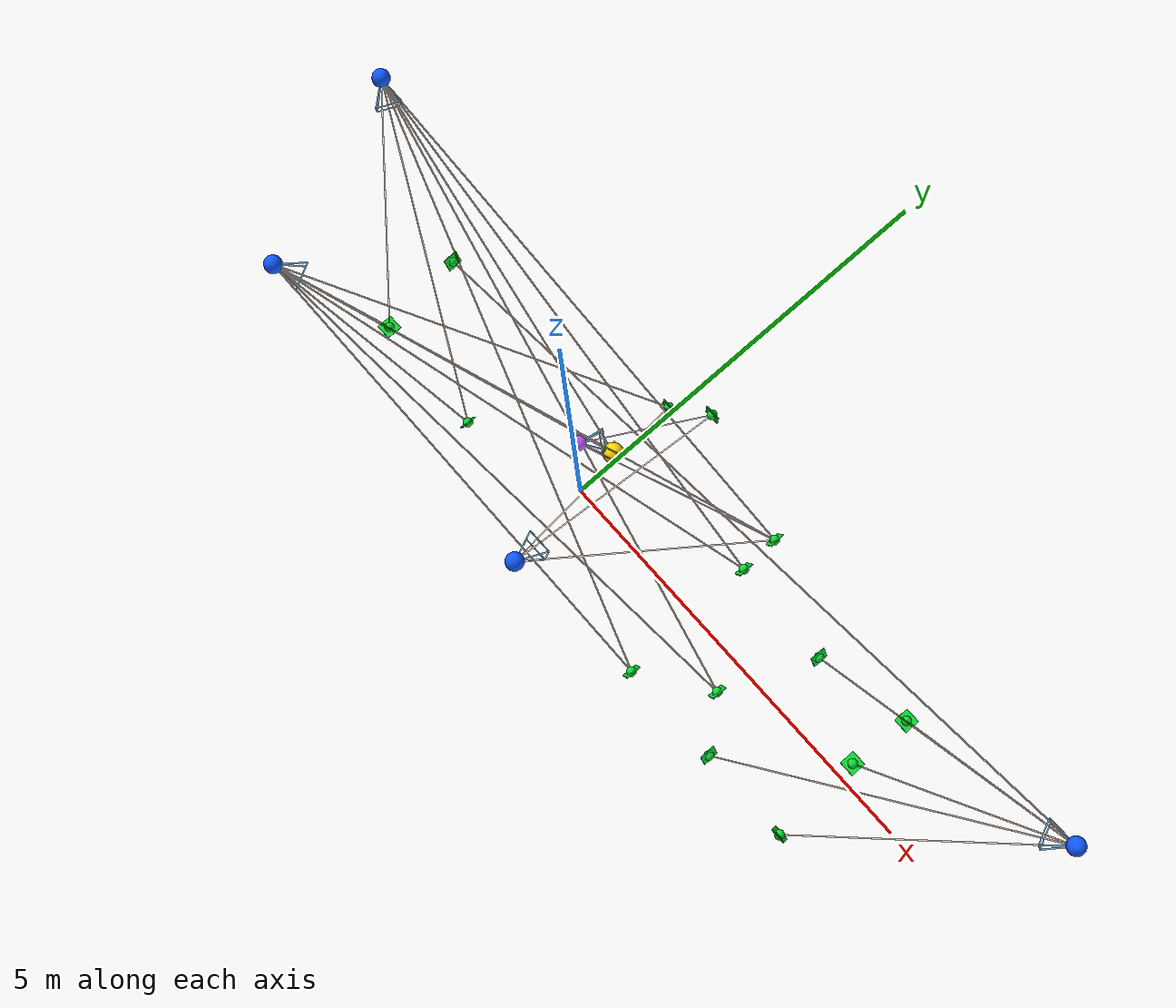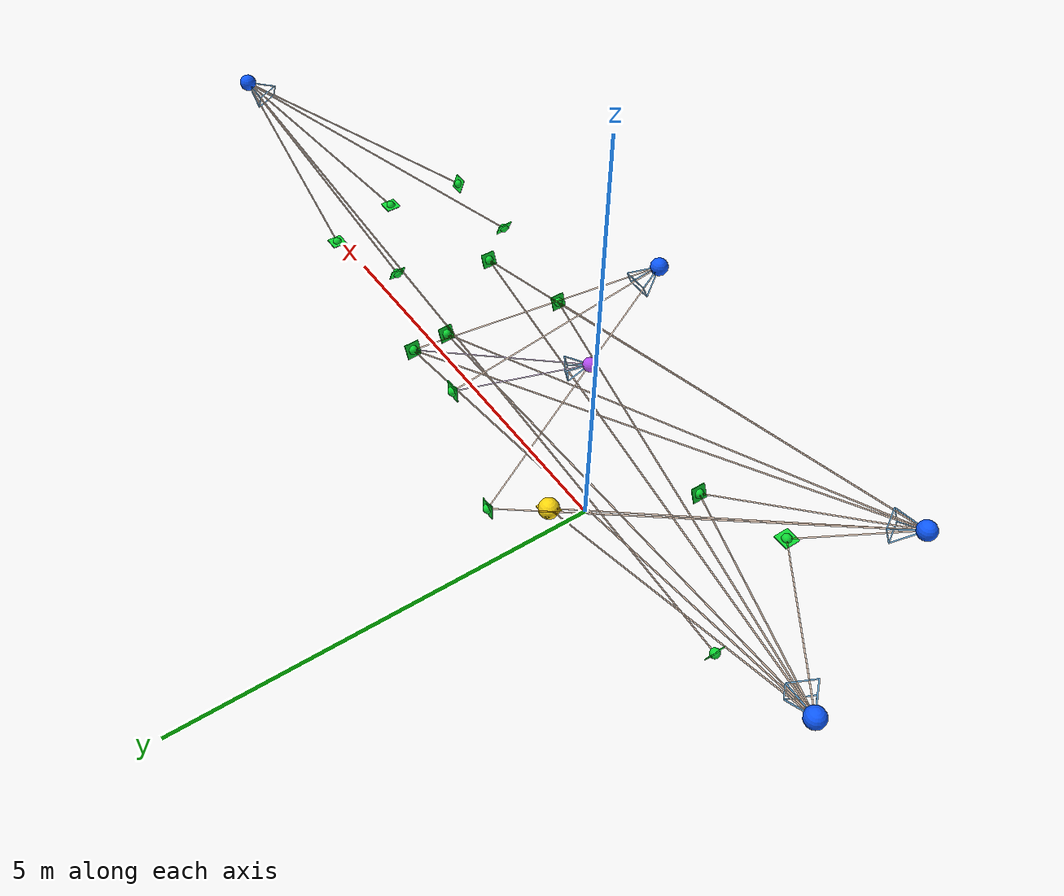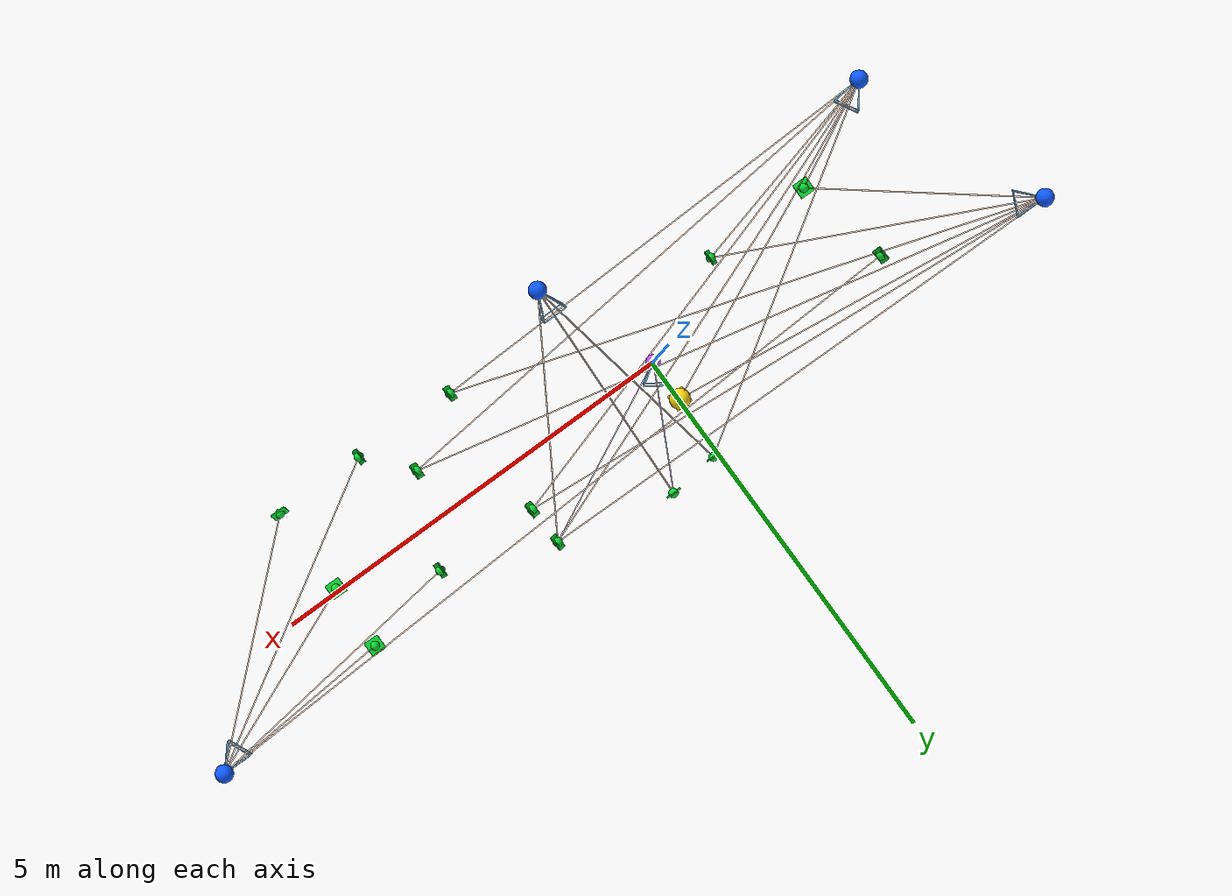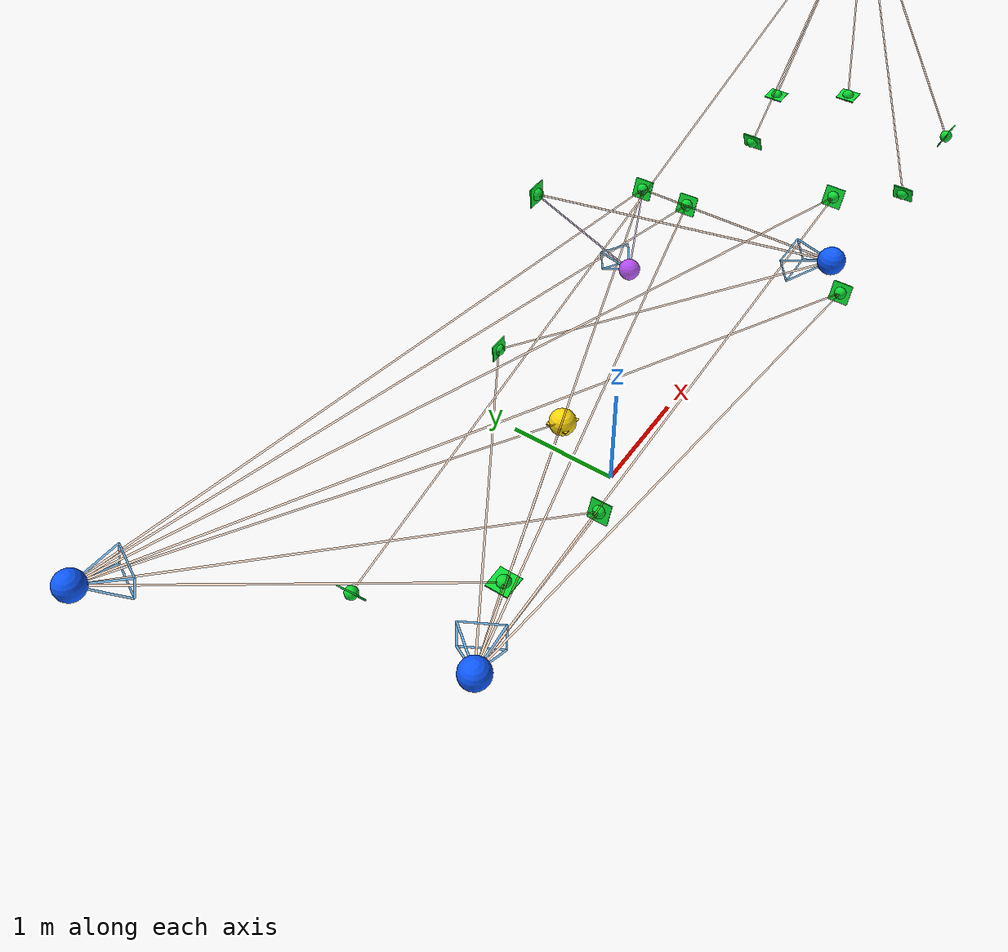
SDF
<?xml version="1.0"?>
<sdf version="1.7">
  <model name="ap02_graph_presentation_observation_overlay">
    <static>true</static>
    <link name="ap02_presentation_overlay_link">

      <visual name="NODE_REF_ARUCO_14">
        <pose>0.000000 0.500000 0.400000 0 0 0</pose>
        <geometry><sphere><radius>0.1200</radius></sphere></geometry>

          <material>
            <ambient>1.000 0.850 0.050 1.000</ambient>
            <diffuse>1.000 0.850 0.050 1.000</diffuse>
          </material>
      </visual>
      <visual name="PLANE_REF_ARUCO_14">
        <pose>0.000000 0.500000 0.400000 -0.000000 -0.000000 0.000000</pose>
        <geometry><box><size>0.2000 0.2000 0.0150</size></box></geometry>

          <material>
            <ambient>1.000 0.850 0.050 1.000</ambient>
            <diffuse>1.000 0.850 0.050 1.000</diffuse>
          </material>
      </visual>
      <visual name="NODE_STATIC_CAMERA_cam_edge_0">
        <pose>0.614323 -1.251895 2.532875 0 0 0</pose>
        <geometry><sphere><radius>0.0950</radius></sphere></geometry>

          <material>
            <ambient>0.050 0.350 1.000 1.000</ambient>
            <diffuse>0.050 0.350 1.000 1.000</diffuse>
          </material>
      </visual>
      <visual name="FRUSTUM_cam_edge_0_frustum_ray_0">
        <pose>0.547086 -1.097788 2.509408 1.709476 -0.000000 -2.730187</pose>
        <geometry>
          <cylinder>
            <radius>0.00600</radius>
            <length>0.339531</length>
          </cylinder>
        </geometry>

          <material>
            <ambient>0.050 0.600 1.000 0.550</ambient>
            <diffuse>0.050 0.600 1.000 0.550</diffuse>
          </material>
      </visual>
      <visual name="FRUSTUM_cam_edge_0_frustum_ray_1">
        <pose>0.682010 -1.097368 2.513895 1.682831 -0.000000 2.728735</pose>
        <geometry>
          <cylinder>
            <radius>0.00600</radius>
            <length>0.339531</length>
          </cylinder>
        </geometry>

          <material>
            <ambient>0.050 0.600 1.000 0.550</ambient>
            <diffuse>0.050 0.600 1.000 0.550</diffuse>
          </material>
      </visual>
      <visual name="FRUSTUM_cam_edge_0_frustum_ray_2">
        <pose>0.684676 -1.130825 2.436892 2.171701 -0.000000 2.615189</pose>
        <geometry>
          <cylinder>
            <radius>0.00600</radius>
            <length>0.339531</length>
          </cylinder>
        </geometry>

          <material>
            <ambient>0.050 0.600 1.000 0.550</ambient>
            <diffuse>0.050 0.600 1.000 0.550</diffuse>
          </material>
      </visual>
      <visual name="FRUSTUM_cam_edge_0_frustum_ray_3">
        <pose>0.549751 -1.131245 2.432404 2.204116 -0.000000 -2.650183</pose>
        <geometry>
          <cylinder>
            <radius>0.00600</radius>
            <length>0.339531</length>
          </cylinder>
        </geometry>

          <material>
            <ambient>0.050 0.600 1.000 0.550</ambient>
            <diffuse>0.050 0.600 1.000 0.550</diffuse>
          </material>
      </visual>
      <visual name="FRUSTUM_cam_edge_0_frustum_rect_0">
        <pose>0.614773 -0.943262 2.490428 1.537548 -0.000000 1.573911</pose>
        <geometry>
          <cylinder>
            <radius>0.00500</radius>
            <length>0.270000</length>
          </cylinder>
        </geometry>

          <material>
            <ambient>0.050 0.600 1.000 0.550</ambient>
            <diffuse>0.050 0.600 1.000 0.550</diffuse>
          </material>
      </visual>
      <visual name="FRUSTUM_cam_edge_0_frustum_rect_1">
        <pose>0.752363 -0.976299 2.417912 2.730561 0.000000 0.079500</pose>
        <geometry>
          <cylinder>
            <radius>0.00500</radius>
            <length>0.168000</length>
          </cylinder>
        </geometry>

          <material>
            <ambient>0.050 0.600 1.000 0.550</ambient>
            <diffuse>0.050 0.600 1.000 0.550</diffuse>
          </material>
      </visual>
      <visual name="FRUSTUM_cam_edge_0_frustum_rect_2">
        <pose>0.620104 -1.010175 2.336421 1.604045 -0.000000 -1.567682</pose>
        <geometry>
          <cylinder>
            <radius>0.00500</radius>
            <length>0.270000</length>
          </cylinder>
        </geometry>

          <material>
            <ambient>0.050 0.600 1.000 0.550</ambient>
            <diffuse>0.050 0.600 1.000 0.550</diffuse>
          </material>
      </visual>
      <visual name="FRUSTUM_cam_edge_0_frustum_rect_3">
        <pose>0.482514 -0.977139 2.408937 0.411032 -0.000000 -3.062092</pose>
        <geometry>
          <cylinder>
            <radius>0.00500</radius>
            <length>0.168000</length>
          </cylinder>
        </geometry>

          <material>
            <ambient>0.050 0.600 1.000 0.550</ambient>
            <diffuse>0.050 0.600 1.000 0.550</diffuse>
          </material>
      </visual>
      <visual name="NODE_STATIC_CAMERA_cam_edge_1">
        <pose>-4.083874 0.999618 2.503114 0 0 0</pose>
        <geometry><sphere><radius>0.0950</radius></sphere></geometry>

          <material>
            <ambient>0.050 0.350 1.000 1.000</ambient>
            <diffuse>0.050 0.350 1.000 1.000</diffuse>
          </material>
      </visual>
      <visual name="FRUSTUM_cam_edge_1_frustum_ray_0">
        <pose>-3.914203 0.994303 2.505086 1.559179 0.000000 1.539480</pose>
        <geometry>
          <cylinder>
            <radius>0.00600</radius>
            <length>0.339531</length>
          </cylinder>
        </geometry>

          <material>
            <ambient>0.050 0.600 1.000 0.550</ambient>
            <diffuse>0.050 0.600 1.000 0.550</diffuse>
          </material>
      </visual>
      <visual name="FRUSTUM_cam_edge_1_frustum_ray_1">
        <pose>-3.971731 0.872174 2.504626 1.561888 0.000000 0.721622</pose>
        <geometry>
          <cylinder>
            <radius>0.00600</radius>
            <length>0.339531</length>
          </cylinder>
        </geometry>

          <material>
            <ambient>0.050 0.600 1.000 0.550</ambient>
            <diffuse>0.050 0.600 1.000 0.550</diffuse>
          </material>
      </visual>
      <visual name="FRUSTUM_cam_edge_1_frustum_ray_2">
        <pose>-3.991283 0.881690 2.423490 2.058985 0.000000 0.665618</pose>
        <geometry>
          <cylinder>
            <radius>0.00600</radius>
            <length>0.339531</length>
          </cylinder>
        </geometry>

          <material>
            <ambient>0.050 0.600 1.000 0.550</ambient>
            <diffuse>0.050 0.600 1.000 0.550</diffuse>
          </material>
      </visual>
      <visual name="FRUSTUM_cam_edge_1_frustum_ray_3">
        <pose>-3.933755 1.003818 2.423950 2.055920 -0.000000 1.598768</pose>
        <geometry>
          <cylinder>
            <radius>0.00600</radius>
            <length>0.339531</length>
          </cylinder>
        </geometry>

          <material>
            <ambient>0.050 0.600 1.000 0.550</ambient>
            <diffuse>0.050 0.600 1.000 0.550</diffuse>
          </material>
      </visual>
      <visual name="FRUSTUM_cam_edge_1_frustum_rect_0">
        <pose>-3.802060 0.866859 2.506599 1.574203 -0.000000 -0.440213</pose>
        <geometry>
          <cylinder>
            <radius>0.00500</radius>
            <length>0.270000</length>
          </cylinder>
        </geometry>

          <material>
            <ambient>0.050 0.600 1.000 0.550</ambient>
            <diffuse>0.050 0.600 1.000 0.550</diffuse>
          </material>
      </visual>
      <visual name="FRUSTUM_cam_edge_1_frustum_rect_1">
        <pose>-3.879140 0.754246 2.425002 -2.906676 -0.116742 1.570796</pose>
        <geometry>
          <cylinder>
            <radius>0.00500</radius>
            <length>0.168000</length>
          </cylinder>
        </geometry>

          <material>
            <ambient>0.050 0.600 1.000 0.550</ambient>
            <diffuse>0.050 0.600 1.000 0.550</diffuse>
          </material>
      </visual>
      <visual name="FRUSTUM_cam_edge_1_frustum_rect_2">
        <pose>-3.841164 0.885890 2.344325 1.567390 -0.000000 2.701379</pose>
        <geometry>
          <cylinder>
            <radius>0.00500</radius>
            <length>0.270000</length>
          </cylinder>
        </geometry>

          <material>
            <ambient>0.050 0.600 1.000 0.550</ambient>
            <diffuse>0.050 0.600 1.000 0.550</diffuse>
          </material>
      </visual>
      <visual name="FRUSTUM_cam_edge_1_frustum_rect_3">
        <pose>-3.764084 0.998503 2.425922 -0.234917 0.116742 -1.570796</pose>
        <geometry>
          <cylinder>
            <radius>0.00500</radius>
            <length>0.168000</length>
          </cylinder>
        </geometry>

          <material>
            <ambient>0.050 0.600 1.000 0.550</ambient>
            <diffuse>0.050 0.600 1.000 0.550</diffuse>
          </material>
      </visual>
      <visual name="NODE_STATIC_CAMERA_cam_edge_3">
        <pose>-3.280583 -1.075010 2.432253 0 0 0</pose>
        <geometry><sphere><radius>0.0950</radius></sphere></geometry>

          <material>
            <ambient>0.050 0.350 1.000 1.000</ambient>
            <diffuse>0.050 0.350 1.000 1.000</diffuse>
          </material>
      </visual>
      <visual name="FRUSTUM_cam_edge_3_frustum_ray_0">
        <pose>-3.177546 -0.940302 2.424685 1.615386 -0.000000 2.488633</pose>
        <geometry>
          <cylinder>
            <radius>0.00600</radius>
            <length>0.339531</length>
          </cylinder>
        </geometry>

          <material>
            <ambient>0.050 0.600 1.000 0.550</ambient>
            <diffuse>0.050 0.600 1.000 0.550</diffuse>
          </material>
      </visual>
      <visual name="FRUSTUM_cam_edge_3_frustum_ray_1">
        <pose>-3.111895 -1.058252 2.423102 1.624727 -0.000000 1.669814</pose>
        <geometry>
          <cylinder>
            <radius>0.00600</radius>
            <length>0.339531</length>
          </cylinder>
        </geometry>

          <material>
            <ambient>0.050 0.600 1.000 0.550</ambient>
            <diffuse>0.050 0.600 1.000 0.550</diffuse>
          </material>
      </visual>
      <visual name="FRUSTUM_cam_edge_3_frustum_ray_2">
        <pose>-3.135903 -1.070547 2.343550 2.120578 -0.000000 1.601634</pose>
        <geometry>
          <cylinder>
            <radius>0.00600</radius>
            <length>0.339531</length>
          </cylinder>
        </geometry>

          <material>
            <ambient>0.050 0.600 1.000 0.550</ambient>
            <diffuse>0.050 0.600 1.000 0.550</diffuse>
          </material>
      </visual>
      <visual name="FRUSTUM_cam_edge_3_frustum_ray_3">
        <pose>-3.201555 -0.952597 2.345134 2.109672 -0.000000 2.568329</pose>
        <geometry>
          <cylinder>
            <radius>0.00600</radius>
            <length>0.339531</length>
          </cylinder>
        </geometry>

          <material>
            <ambient>0.050 0.600 1.000 0.550</ambient>
            <diffuse>0.050 0.600 1.000 0.550</diffuse>
          </material>
      </visual>
      <visual name="FRUSTUM_cam_edge_3_frustum_rect_0">
        <pose>-3.008858 -0.923544 2.415534 1.582529 0.000000 0.507897</pose>
        <geometry>
          <cylinder>
            <radius>0.00500</radius>
            <length>0.270000</length>
          </cylinder>
        </geometry>

          <material>
            <ambient>0.050 0.600 1.000 0.550</ambient>
            <diffuse>0.050 0.600 1.000 0.550</diffuse>
          </material>
      </visual>
      <visual name="FRUSTUM_cam_edge_3_frustum_rect_1">
        <pose>-2.967215 -1.053789 2.334399 2.814688 -0.000000 -1.097510</pose>
        <geometry>
          <cylinder>
            <radius>0.00500</radius>
            <length>0.168000</length>
          </cylinder>
        </geometry>

          <material>
            <ambient>0.050 0.600 1.000 0.550</ambient>
            <diffuse>0.050 0.600 1.000 0.550</diffuse>
          </material>
      </visual>
      <visual name="FRUSTUM_cam_edge_3_frustum_rect_2">
        <pose>-3.056875 -0.948134 2.256432 1.559064 -0.000000 -2.633696</pose>
        <geometry>
          <cylinder>
            <radius>0.00500</radius>
            <length>0.270000</length>
          </cylinder>
        </geometry>

          <material>
            <ambient>0.050 0.600 1.000 0.550</ambient>
            <diffuse>0.050 0.600 1.000 0.550</diffuse>
          </material>
      </visual>
      <visual name="FRUSTUM_cam_edge_3_frustum_rect_3">
        <pose>-3.098518 -0.817888 2.337567 0.326905 -0.000000 2.044083</pose>
        <geometry>
          <cylinder>
            <radius>0.00500</radius>
            <length>0.168000</length>
          </cylinder>
        </geometry>

          <material>
            <ambient>0.050 0.600 1.000 0.550</ambient>
            <diffuse>0.050 0.600 1.000 0.550</diffuse>
          </material>
      </visual>
      <visual name="NODE_STATIC_CAMERA_cam_edge_5">
        <pose>6.015453 0.834823 2.612785 0 0 0</pose>
        <geometry><sphere><radius>0.0950</radius></sphere></geometry>

          <material>
            <ambient>0.050 0.350 1.000 1.000</ambient>
            <diffuse>0.050 0.350 1.000 1.000</diffuse>
          </material>
      </visual>
      <visual name="FRUSTUM_cam_edge_5_frustum_ray_0">
        <pose>5.898478 0.711931 2.606908 1.605421 -0.000000 -0.760735</pose>
        <geometry>
          <cylinder>
            <radius>0.00600</radius>
            <length>0.339531</length>
          </cylinder>
        </geometry>

          <material>
            <ambient>0.050 0.600 1.000 0.550</ambient>
            <diffuse>0.050 0.600 1.000 0.550</diffuse>
          </material>
      </visual>
      <visual name="FRUSTUM_cam_edge_5_frustum_ray_1">
        <pose>5.846646 0.835996 2.594809 1.676878 -0.000000 -1.577743</pose>
        <geometry>
          <cylinder>
            <radius>0.00600</radius>
            <length>0.339531</length>
          </cylinder>
        </geometry>

          <material>
            <ambient>0.050 0.600 1.000 0.550</ambient>
            <diffuse>0.050 0.600 1.000 0.550</diffuse>
          </material>
      </visual>
      <visual name="FRUSTUM_cam_edge_5_frustum_ray_2">
        <pose>5.875947 0.840573 2.516218 2.175870 -0.000000 -1.611987</pose>
        <geometry>
          <cylinder>
            <radius>0.00600</radius>
            <length>0.339531</length>
          </cylinder>
        </geometry>

          <material>
            <ambient>0.050 0.600 1.000 0.550</ambient>
            <diffuse>0.050 0.600 1.000 0.550</diffuse>
          </material>
      </visual>
      <visual name="FRUSTUM_cam_edge_5_frustum_ray_3">
        <pose>5.927778 0.716508 2.528317 2.091577 -0.000000 -0.637735</pose>
        <geometry>
          <cylinder>
            <radius>0.00600</radius>
            <length>0.339531</length>
          </cylinder>
        </geometry>

          <material>
            <ambient>0.050 0.600 1.000 0.550</ambient>
            <diffuse>0.050 0.600 1.000 0.550</diffuse>
          </material>
      </visual>
      <visual name="FRUSTUM_cam_edge_5_frustum_rect_0">
        <pose>5.729671 0.713104 2.588933 1.660535 -0.000000 -2.745854</pose>
        <geometry>
          <cylinder>
            <radius>0.00500</radius>
            <length>0.270000</length>
          </cylinder>
        </geometry>

          <material>
            <ambient>0.050 0.600 1.000 0.550</ambient>
            <diffuse>0.050 0.600 1.000 0.550</diffuse>
          </material>
      </visual>
      <visual name="FRUSTUM_cam_edge_5_frustum_rect_1">
        <pose>5.707140 0.841746 2.498243 2.780773 -0.000000 1.725755</pose>
        <geometry>
          <cylinder>
            <radius>0.00500</radius>
            <length>0.168000</length>
          </cylinder>
        </geometry>

          <material>
            <ambient>0.050 0.600 1.000 0.550</ambient>
            <diffuse>0.050 0.600 1.000 0.550</diffuse>
          </material>
      </visual>
      <visual name="FRUSTUM_cam_edge_5_frustum_rect_2">
        <pose>5.788272 0.722258 2.431750 1.481058 0.000000 0.395738</pose>
        <geometry>
          <cylinder>
            <radius>0.00500</radius>
            <length>0.270000</length>
          </cylinder>
        </geometry>

          <material>
            <ambient>0.050 0.600 1.000 0.550</ambient>
            <diffuse>0.050 0.600 1.000 0.550</diffuse>
          </material>
      </visual>
      <visual name="FRUSTUM_cam_edge_5_frustum_rect_3">
        <pose>5.810803 0.593616 2.522440 0.360820 -0.000000 -1.415837</pose>
        <geometry>
          <cylinder>
            <radius>0.00500</radius>
            <length>0.168000</length>
          </cylinder>
        </geometry>

          <material>
            <ambient>0.050 0.600 1.000 0.550</ambient>
            <diffuse>0.050 0.600 1.000 0.550</diffuse>
          </material>
      </visual>
      <visual name="NODE_ARUCO_MARKER_000">
        <pose>-2.628536 0.514799 1.044231 0 0 0</pose>
        <geometry><sphere><radius>0.0520</radius></sphere></geometry>

          <material>
            <ambient>0.050 0.850 0.200 0.920</ambient>
            <diffuse>0.050 0.850 0.200 0.920</diffuse>
          </material>
      </visual>
      <visual name="PLANE_ARUCO_MARKER_000">
        <pose>-2.628536 0.514799 1.044231 1.138665 0.032055 1.629509</pose>
        <geometry><box><size>0.1700 0.1700 0.0100</size></box></geometry>

          <material>
            <ambient>0.050 0.850 0.200 0.920</ambient>
            <diffuse>0.050 0.850 0.200 0.920</diffuse>
          </material>
      </visual>
      <visual name="NODE_ARUCO_MARKER_001">
        <pose>-2.297783 -0.541403 1.626415 0 0 0</pose>
        <geometry><sphere><radius>0.0520</radius></sphere></geometry>

          <material>
            <ambient>0.050 0.850 0.200 0.920</ambient>
            <diffuse>0.050 0.850 0.200 0.920</diffuse>
          </material>
      </visual>
      <visual name="PLANE_ARUCO_MARKER_001">
        <pose>-2.297783 -0.541403 1.626415 0.019672 -0.009217 -1.570660</pose>
        <geometry><box><size>0.1700 0.1700 0.0100</size></box></geometry>

          <material>
            <ambient>0.050 0.850 0.200 0.920</ambient>
            <diffuse>0.050 0.850 0.200 0.920</diffuse>
          </material>
      </visual>
      <visual name="NODE_ARUCO_MARKER_002">
        <pose>-1.126415 -0.539103 1.100032 0 0 0</pose>
        <geometry><sphere><radius>0.0520</radius></sphere></geometry>

          <material>
            <ambient>0.050 0.850 0.200 0.920</ambient>
            <diffuse>0.050 0.850 0.200 0.920</diffuse>
          </material>
      </visual>
      <visual name="PLANE_ARUCO_MARKER_002">
        <pose>-1.126415 -0.539103 1.100032 1.198715 -0.004348 -1.570891</pose>
        <geometry><box><size>0.1700 0.1700 0.0100</size></box></geometry>

          <material>
            <ambient>0.050 0.850 0.200 0.920</ambient>
            <diffuse>0.050 0.850 0.200 0.920</diffuse>
          </material>
      </visual>
      <visual name="NODE_ARUCO_MARKER_003">
        <pose>0.093963 1.219141 0.793485 0 0 0</pose>
        <geometry><sphere><radius>0.0520</radius></sphere></geometry>

          <material>
            <ambient>0.050 0.850 0.200 0.920</ambient>
            <diffuse>0.050 0.850 0.200 0.920</diffuse>
          </material>
      </visual>
      <visual name="PLANE_ARUCO_MARKER_003">
        <pose>0.093963 1.219141 0.793485 1.566090 -0.010429 0.010513</pose>
        <geometry><box><size>0.1700 0.1700 0.0100</size></box></geometry>

          <material>
            <ambient>0.050 0.850 0.200 0.920</ambient>
            <diffuse>0.050 0.850 0.200 0.920</diffuse>
          </material>
      </visual>
      <visual name="NODE_ARUCO_MARKER_004">
        <pose>0.695934 1.231284 2.022931 0 0 0</pose>
        <geometry><sphere><radius>0.0520</radius></sphere></geometry>

          <material>
            <ambient>0.050 0.850 0.200 0.920</ambient>
            <diffuse>0.050 0.850 0.200 0.920</diffuse>
          </material>
      </visual>
      <visual name="PLANE_ARUCO_MARKER_004">
        <pose>0.695934 1.231284 2.022931 1.539347 -0.004755 0.004632</pose>
        <geometry><box><size>0.1700 0.1700 0.0100</size></box></geometry>

          <material>
            <ambient>0.050 0.850 0.200 0.920</ambient>
            <diffuse>0.050 0.850 0.200 0.920</diffuse>
          </material>
      </visual>
      <visual name="NODE_ARUCO_MARKER_005">
        <pose>1.994678 -1.003182 1.131389 0 0 0</pose>
        <geometry><sphere><radius>0.0520</radius></sphere></geometry>

          <material>
            <ambient>0.050 0.850 0.200 0.920</ambient>
            <diffuse>0.050 0.850 0.200 0.920</diffuse>
          </material>
      </visual>
      <visual name="PLANE_ARUCO_MARKER_005">
        <pose>1.994678 -1.003182 1.131389 1.185477 -0.018482 -1.580616</pose>
        <geometry><box><size>0.1700 0.1700 0.0100</size></box></geometry>

          <material>
            <ambient>0.050 0.850 0.200 0.920</ambient>
            <diffuse>0.050 0.850 0.200 0.920</diffuse>
          </material>
      </visual>
      <visual name="NODE_ARUCO_MARKER_006">
        <pose>2.001549 0.518513 1.405185 0 0 0</pose>
        <geometry><sphere><radius>0.0520</radius></sphere></geometry>

          <material>
            <ambient>0.050 0.850 0.200 0.920</ambient>
            <diffuse>0.050 0.850 0.200 0.920</diffuse>
          </material>
      </visual>
      <visual name="PLANE_ARUCO_MARKER_006">
        <pose>2.001549 0.518513 1.405185 1.152672 -0.011886 -1.540578</pose>
        <geometry><box><size>0.1700 0.1700 0.0100</size></box></geometry>

          <material>
            <ambient>0.050 0.850 0.200 0.920</ambient>
            <diffuse>0.050 0.850 0.200 0.920</diffuse>
          </material>
      </visual>
      <visual name="NODE_ARUCO_MARKER_007">
        <pose>1.985723 0.957367 1.402695 0 0 0</pose>
        <geometry><sphere><radius>0.0520</radius></sphere></geometry>

          <material>
            <ambient>0.050 0.850 0.200 0.920</ambient>
            <diffuse>0.050 0.850 0.200 0.920</diffuse>
          </material>
      </visual>
      <visual name="PLANE_ARUCO_MARKER_007">
        <pose>1.985723 0.957367 1.402695 1.175845 -0.010178 -1.546917</pose>
        <geometry><box><size>0.1700 0.1700 0.0100</size></box></geometry>

          <material>
            <ambient>0.050 0.850 0.200 0.920</ambient>
            <diffuse>0.050 0.850 0.200 0.920</diffuse>
          </material>
      </visual>
      <visual name="NODE_ARUCO_MARKER_008">
        <pose>2.746537 -0.528879 1.462962 0 0 0</pose>
        <geometry><sphere><radius>0.0520</radius></sphere></geometry>

          <material>
            <ambient>0.050 0.850 0.200 0.920</ambient>
            <diffuse>0.050 0.850 0.200 0.920</diffuse>
          </material>
      </visual>
      <visual name="PLANE_ARUCO_MARKER_008">
        <pose>2.746537 -0.528879 1.462962 1.177056 -0.020010 -1.594475</pose>
        <geometry><box><size>0.1700 0.1700 0.0100</size></box></geometry>

          <material>
            <ambient>0.050 0.850 0.200 0.920</ambient>
            <diffuse>0.050 0.850 0.200 0.920</diffuse>
          </material>
      </visual>
      <visual name="NODE_ARUCO_MARKER_009">
        <pose>3.166194 0.468963 1.425178 0 0 0</pose>
        <geometry><sphere><radius>0.0520</radius></sphere></geometry>

          <material>
            <ambient>0.050 0.850 0.200 0.920</ambient>
            <diffuse>0.050 0.850 0.200 0.920</diffuse>
          </material>
      </visual>
      <visual name="PLANE_ARUCO_MARKER_009">
        <pose>3.166194 0.468963 1.425178 1.140767 0.017436 1.559894</pose>
        <geometry><box><size>0.1700 0.1700 0.0100</size></box></geometry>

          <material>
            <ambient>0.050 0.850 0.200 0.920</ambient>
            <diffuse>0.050 0.850 0.200 0.920</diffuse>
          </material>
      </visual>
      <visual name="NODE_ARUCO_MARKER_010">
        <pose>3.156144 -1.010864 1.450220 0 0 0</pose>
        <geometry><sphere><radius>0.0520</radius></sphere></geometry>

          <material>
            <ambient>0.050 0.850 0.200 0.920</ambient>
            <diffuse>0.050 0.850 0.200 0.920</diffuse>
          </material>
      </visual>
      <visual name="PLANE_ARUCO_MARKER_010">
        <pose>3.156144 -1.010864 1.450220 1.148899 0.032064 1.573952</pose>
        <geometry><box><size>0.1700 0.1700 0.0100</size></box></geometry>

          <material>
            <ambient>0.050 0.850 0.200 0.920</ambient>
            <diffuse>0.050 0.850 0.200 0.920</diffuse>
          </material>
      </visual>
      <visual name="NODE_ARUCO_MARKER_011">
        <pose>4.153288 -0.022874 1.571437 0 0 0</pose>
        <geometry><sphere><radius>0.0520</radius></sphere></geometry>

          <material>
            <ambient>0.050 0.850 0.200 0.920</ambient>
            <diffuse>0.050 0.850 0.200 0.920</diffuse>
          </material>
      </visual>
      <visual name="PLANE_ARUCO_MARKER_011">
        <pose>4.153288 -0.022874 1.571437 -0.011593 0.017309 1.561211</pose>
        <geometry><box><size>0.1700 0.1700 0.0100</size></box></geometry>

          <material>
            <ambient>0.050 0.850 0.200 0.920</ambient>
            <diffuse>0.050 0.850 0.200 0.920</diffuse>
          </material>
      </visual>
      <visual name="NODE_ARUCO_MARKER_012">
        <pose>4.181390 -1.013180 1.472957 0 0 0</pose>
        <geometry><sphere><radius>0.0520</radius></sphere></geometry>

          <material>
            <ambient>0.050 0.850 0.200 0.920</ambient>
            <diffuse>0.050 0.850 0.200 0.920</diffuse>
          </material>
      </visual>
      <visual name="PLANE_ARUCO_MARKER_012">
        <pose>4.181390 -1.013180 1.472957 1.194506 0.021951 3.135067</pose>
        <geometry><box><size>0.1700 0.1700 0.0100</size></box></geometry>

          <material>
            <ambient>0.050 0.850 0.200 0.920</ambient>
            <diffuse>0.050 0.850 0.200 0.920</diffuse>
          </material>
      </visual>
      <visual name="NODE_ARUCO_MARKER_013">
        <pose>4.211863 0.711244 1.294109 0 0 0</pose>
        <geometry><sphere><radius>0.0520</radius></sphere></geometry>

          <material>
            <ambient>0.050 0.850 0.200 0.920</ambient>
            <diffuse>0.050 0.850 0.200 0.920</diffuse>
          </material>
      </visual>
      <visual name="PLANE_ARUCO_MARKER_013">
        <pose>4.211863 0.711244 1.294109 -0.007458 0.009415 1.562709</pose>
        <geometry><box><size>0.1700 0.1700 0.0100</size></box></geometry>

          <material>
            <ambient>0.050 0.850 0.200 0.920</ambient>
            <diffuse>0.050 0.850 0.200 0.920</diffuse>
          </material>
      </visual>
      <visual name="NODE_ARUCO_MARKER_014">
        <pose>0.000000 0.500000 0.400000 0 0 0</pose>
        <geometry><sphere><radius>0.0700</radius></sphere></geometry>

          <material>
            <ambient>0.050 0.850 0.200 0.920</ambient>
            <diffuse>0.050 0.850 0.200 0.920</diffuse>
          </material>
      </visual>
      <visual name="PLANE_ARUCO_MARKER_014">
        <pose>0.000000 0.500000 0.400000 -0.000000 -0.000000 0.000000</pose>
        <geometry><box><size>0.1700 0.1700 0.0100</size></box></geometry>

          <material>
            <ambient>0.050 0.850 0.200 0.920</ambient>
            <diffuse>0.050 0.850 0.200 0.920</diffuse>
          </material>
      </visual>
      <visual name="OBS_STATIC_EDGE_000_cam_edge_0_to_marker_003">
        <pose>0.354143 -0.016377 1.663180 2.173969 -0.000000 -2.934042</pose>
        <geometry>
          <cylinder>
            <radius>0.00600</radius>
            <length>3.066312</length>
          </cylinder>
        </geometry>

          <material>
            <ambient>1.000 0.450 0.050 0.230</ambient>
            <diffuse>1.000 0.450 0.050 0.230</diffuse>
          </material>
      </visual>
      <visual name="OBS_STATIC_EDGE_001_cam_edge_0_to_marker_004">
        <pose>0.655128 -0.010305 2.277903 1.773233 -0.000000 3.108739</pose>
        <geometry>
          <cylinder>
            <radius>0.00600</radius>
            <length>2.536312</length>
          </cylinder>
        </geometry>

          <material>
            <ambient>1.000 0.450 0.050 0.230</ambient>
            <diffuse>1.000 0.450 0.050 0.230</diffuse>
          </material>
      </visual>
      <visual name="OBS_STATIC_EDGE_002_cam_edge_0_to_marker_007">
        <pose>1.300023 -0.147264 1.967785 1.980799 -0.000000 2.586055</pose>
        <geometry>
          <cylinder>
            <radius>0.00600</radius>
            <length>2.835293</length>
          </cylinder>
        </geometry>

          <material>
            <ambient>1.000 0.450 0.050 0.230</ambient>
            <diffuse>1.000 0.450 0.050 0.230</diffuse>
          </material>
      </visual>
      <visual name="OBS_STATIC_EDGE_003_cam_edge_1_to_marker_001">
        <pose>-3.190828 0.229107 2.064765 1.926619 0.000000 0.858924</pose>
        <geometry>
          <cylinder>
            <radius>0.00600</radius>
            <length>2.516638</length>
          </cylinder>
        </geometry>

          <material>
            <ambient>1.000 0.450 0.050 0.230</ambient>
            <diffuse>1.000 0.450 0.050 0.230</diffuse>
          </material>
      </visual>
      <visual name="OBS_STATIC_EDGE_004_cam_edge_1_to_marker_002">
        <pose>-2.605144 0.230258 1.801573 1.969160 0.000000 1.091053</pose>
        <geometry>
          <cylinder>
            <radius>0.00600</radius>
            <length>3.617024</length>
          </cylinder>
        </geometry>

          <material>
            <ambient>1.000 0.450 0.050 0.230</ambient>
            <diffuse>1.000 0.450 0.050 0.230</diffuse>
          </material>
      </visual>
      <visual name="OBS_STATIC_EDGE_005_cam_edge_1_to_marker_005">
        <pose>-1.044598 -0.001782 1.817252 1.781934 0.000000 1.252512</pose>
        <geometry>
          <cylinder>
            <radius>0.00600</radius>
            <length>6.545351</length>
          </cylinder>
        </geometry>

          <material>
            <ambient>1.000 0.450 0.050 0.230</ambient>
            <diffuse>1.000 0.450 0.050 0.230</diffuse>
          </material>
      </visual>
      <visual name="OBS_STATIC_EDGE_006_cam_edge_1_to_marker_006">
        <pose>-1.041163 0.759065 1.954150 1.748752 0.000000 1.491902</pose>
        <geometry>
          <cylinder>
            <radius>0.00600</radius>
            <length>6.202360</length>
          </cylinder>
        </geometry>

          <material>
            <ambient>1.000 0.450 0.050 0.230</ambient>
            <diffuse>1.000 0.450 0.050 0.230</diffuse>
          </material>
      </visual>
      <visual name="OBS_STATIC_EDGE_007_cam_edge_1_to_marker_007">
        <pose>-1.049076 0.978493 1.952905 1.750144 0.000000 1.563835</pose>
        <geometry>
          <cylinder>
            <radius>0.00600</radius>
            <length>6.168688</length>
          </cylinder>
        </geometry>

          <material>
            <ambient>1.000 0.450 0.050 0.230</ambient>
            <diffuse>1.000 0.450 0.050 0.230</diffuse>
          </material>
      </visual>
      <visual name="OBS_STATIC_EDGE_008_cam_edge_1_to_marker_008">
        <pose>-0.668668 0.235369 1.983038 1.718324 0.000000 1.350645</pose>
        <geometry>
          <cylinder>
            <radius>0.00600</radius>
            <length>7.076209</length>
          </cylinder>
        </geometry>

          <material>
            <ambient>1.000 0.450 0.050 0.230</ambient>
            <diffuse>1.000 0.450 0.050 0.230</diffuse>
          </material>
      </visual>
      <visual name="OBS_STATIC_EDGE_009_cam_edge_1_to_marker_014">
        <pose>-2.041937 0.749809 1.451557 2.043339 0.000000 1.449062</pose>
        <geometry>
          <cylinder>
            <radius>0.00600</radius>
            <length>4.620685</length>
          </cylinder>
        </geometry>

          <material>
            <ambient>1.000 0.450 0.050 0.230</ambient>
            <diffuse>1.000 0.450 0.050 0.230</diffuse>
          </material>
      </visual>
      <visual name="OBS_STATIC_EDGE_010_cam_edge_3_to_marker_001">
        <pose>-2.789183 -0.808207 2.029334 2.195202 -0.000000 2.068207</pose>
        <geometry>
          <cylinder>
            <radius>0.00600</radius>
            <length>1.378407</length>
          </cylinder>
        </geometry>

          <material>
            <ambient>1.000 0.450 0.050 0.230</ambient>
            <diffuse>1.000 0.450 0.050 0.230</diffuse>
          </material>
      </visual>
      <visual name="OBS_STATIC_EDGE_011_cam_edge_3_to_marker_002">
        <pose>-2.203499 -0.807057 1.766142 2.111323 -0.000000 1.814624</pose>
        <geometry>
          <cylinder>
            <radius>0.00600</radius>
            <length>2.588909</length>
          </cylinder>
        </geometry>

          <material>
            <ambient>1.000 0.450 0.050 0.230</ambient>
            <diffuse>1.000 0.450 0.050 0.230</diffuse>
          </material>
      </visual>
      <visual name="OBS_STATIC_EDGE_012_cam_edge_3_to_marker_003">
        <pose>-1.593310 0.072066 1.612869 1.952687 -0.000000 2.167864</pose>
        <geometry>
          <cylinder>
            <radius>0.00600</radius>
            <length>4.397300</length>
          </cylinder>
        </geometry>

          <material>
            <ambient>1.000 0.450 0.050 0.230</ambient>
            <diffuse>1.000 0.450 0.050 0.230</diffuse>
          </material>
      </visual>
      <visual name="OBS_STATIC_EDGE_013_cam_edge_3_to_marker_005">
        <pose>-0.642953 -1.039096 1.781821 1.812548 -0.000000 1.584411</pose>
        <geometry>
          <cylinder>
            <radius>0.00600</radius>
            <length>5.433763</length>
          </cylinder>
        </geometry>

          <material>
            <ambient>1.000 0.450 0.050 0.230</ambient>
            <diffuse>1.000 0.450 0.050 0.230</diffuse>
          </material>
      </visual>
      <visual name="OBS_STATIC_EDGE_014_cam_edge_3_to_marker_006">
        <pose>-0.639517 -0.278249 1.918719 1.754845 -0.000000 1.863795</pose>
        <geometry>
          <cylinder>
            <radius>0.00600</radius>
            <length>5.612049</length>
          </cylinder>
        </geometry>

          <material>
            <ambient>1.000 0.450 0.050 0.230</ambient>
            <diffuse>1.000 0.450 0.050 0.230</diffuse>
          </material>
      </visual>
      <visual name="OBS_STATIC_EDGE_015_cam_edge_3_to_marker_007">
        <pose>-0.647430 -0.058821 1.917474 1.751202 -0.000000 1.939107</pose>
        <geometry>
          <cylinder>
            <radius>0.00600</radius>
            <length>5.737989</length>
          </cylinder>
        </geometry>

          <material>
            <ambient>1.000 0.450 0.050 0.230</ambient>
            <diffuse>1.000 0.450 0.050 0.230</diffuse>
          </material>
      </visual>
      <visual name="OBS_STATIC_EDGE_016_cam_edge_3_to_marker_008">
        <pose>-0.267023 -0.801945 1.947607 1.729613 -0.000000 1.661162</pose>
        <geometry>
          <cylinder>
            <radius>0.00600</radius>
            <length>6.128944</length>
          </cylinder>
        </geometry>

          <material>
            <ambient>1.000 0.450 0.050 0.230</ambient>
            <diffuse>1.000 0.450 0.050 0.230</diffuse>
          </material>
      </visual>
      <visual name="OBS_STATIC_EDGE_017_cam_edge_3_to_marker_014">
        <pose>-1.640291 -0.287505 1.416126 2.080106 -0.000000 2.018398</pose>
        <geometry>
          <cylinder>
            <radius>0.00600</radius>
            <length>4.168085</length>
          </cylinder>
        </geometry>

          <material>
            <ambient>1.000 0.450 0.050 0.230</ambient>
            <diffuse>1.000 0.450 0.050 0.230</diffuse>
          </material>
      </visual>
      <visual name="OBS_STATIC_EDGE_018_cam_edge_5_to_marker_000">
        <pose>1.693459 0.674811 1.828508 1.750184 -0.000000 -1.533790</pose>
        <geometry>
          <cylinder>
            <radius>0.00600</radius>
            <length>8.790980</length>
          </cylinder>
        </geometry>

          <material>
            <ambient>1.000 0.450 0.050 0.230</ambient>
            <diffuse>1.000 0.450 0.050 0.230</diffuse>
          </material>
      </visual>
      <visual name="OBS_STATIC_EDGE_019_cam_edge_5_to_marker_009">
        <pose>4.590824 0.651893 2.018981 1.962816 -0.000000 -1.443090</pose>
        <geometry>
          <cylinder>
            <radius>0.00600</radius>
            <length>3.108463</length>
          </cylinder>
        </geometry>

          <material>
            <ambient>1.000 0.450 0.050 0.230</ambient>
            <diffuse>1.000 0.450 0.050 0.230</diffuse>
          </material>
      </visual>
      <visual name="OBS_STATIC_EDGE_020_cam_edge_5_to_marker_010">
        <pose>4.585798 -0.088020 2.031502 1.899971 -0.000000 -0.997590</pose>
        <geometry>
          <cylinder>
            <radius>0.00600</radius>
            <length>3.596355</length>
          </cylinder>
        </geometry>

          <material>
            <ambient>1.000 0.450 0.050 0.230</ambient>
            <diffuse>1.000 0.450 0.050 0.230</diffuse>
          </material>
      </visual>
      <visual name="OBS_STATIC_EDGE_021_cam_edge_5_to_marker_011">
        <pose>5.084371 0.405974 2.092111 2.040765 -0.000000 -1.139169</pose>
        <geometry>
          <cylinder>
            <radius>0.00600</radius>
            <length>2.299502</length>
          </cylinder>
        </geometry>

          <material>
            <ambient>1.000 0.450 0.050 0.230</ambient>
            <diffuse>1.000 0.450 0.050 0.230</diffuse>
          </material>
      </visual>
      <visual name="OBS_STATIC_EDGE_022_cam_edge_5_to_marker_012">
        <pose>5.098422 -0.089178 2.042871 1.983445 -0.000000 -0.781612</pose>
        <geometry>
          <cylinder>
            <radius>0.00600</radius>
            <length>2.842202</length>
          </cylinder>
        </geometry>

          <material>
            <ambient>1.000 0.450 0.050 0.230</ambient>
            <diffuse>1.000 0.450 0.050 0.230</diffuse>
          </material>
      </visual>
      <visual name="OBS_STATIC_EDGE_023_cam_edge_5_to_marker_013">
        <pose>5.113658 0.773033 1.953447 2.201001 -0.000000 -1.502385</pose>
        <geometry>
          <cylinder>
            <radius>0.00600</radius>
            <length>2.237658</length>
          </cylinder>
        </geometry>

          <material>
            <ambient>1.000 0.450 0.050 0.230</ambient>
            <diffuse>1.000 0.450 0.050 0.230</diffuse>
          </material>
      </visual>
      <visual name="NODE_REPRESENTATIVE_MOVING_FRAME_moving_frame_000070">
        <pose>0.079529 0.012493 2.240201 0 0 0</pose>
        <geometry><sphere><radius>0.0750</radius></sphere></geometry>

          <material>
            <ambient>0.700 0.200 1.000 0.820</ambient>
            <diffuse>0.700 0.200 1.000 0.820</diffuse>
          </material>
      </visual>
      <visual name="FRUSTUM_moving_frame_000070_frustum_ray_0">
        <pose>0.102735 0.146278 2.243017 1.550066 -0.000000 2.969849</pose>
        <geometry>
          <cylinder>
            <radius>0.00600</radius>
            <length>0.271624</length>
          </cylinder>
        </geometry>

          <material>
            <ambient>0.050 0.600 1.000 0.550</ambient>
            <diffuse>0.050 0.600 1.000 0.550</diffuse>
          </material>
      </visual>
      <visual name="FRUSTUM_moving_frame_000070_frustum_ray_1">
        <pose>0.192990 0.086993 2.244834 1.536678 -0.000000 2.151810</pose>
        <geometry>
          <cylinder>
            <radius>0.00600</radius>
            <length>0.271624</length>
          </cylinder>
        </geometry>

          <material>
            <ambient>0.050 0.600 1.000 0.550</ambient>
            <diffuse>0.050 0.600 1.000 0.550</diffuse>
          </material>
      </visual>
      <visual name="FRUSTUM_moving_frame_000070_frustum_ray_2">
        <pose>0.185026 0.072870 2.179620 2.033166 -0.000000 2.090607</pose>
        <geometry>
          <cylinder>
            <radius>0.00600</radius>
            <length>0.271624</length>
          </cylinder>
        </geometry>

          <material>
            <ambient>0.050 0.600 1.000 0.550</ambient>
            <diffuse>0.050 0.600 1.000 0.550</diffuse>
          </material>
      </visual>
      <visual name="FRUSTUM_moving_frame_000070_frustum_ray_3">
        <pose>0.094771 0.132155 2.177802 2.048176 -0.000000 3.014904</pose>
        <geometry>
          <cylinder>
            <radius>0.00600</radius>
            <length>0.271624</length>
          </cylinder>
        </geometry>

          <material>
            <ambient>0.050 0.600 1.000 0.550</ambient>
            <diffuse>0.050 0.600 1.000 0.550</diffuse>
          </material>
      </visual>
      <visual name="FRUSTUM_moving_frame_000070_frustum_rect_0">
        <pose>0.216195 0.220779 2.247649 1.553967 0.000000 0.989610</pose>
        <geometry>
          <cylinder>
            <radius>0.00500</radius>
            <length>0.216000</length>
          </cylinder>
        </geometry>

          <material>
            <ambient>0.050 0.600 1.000 0.550</ambient>
            <diffuse>0.050 0.600 1.000 0.550</diffuse>
          </material>
      </visual>
      <visual name="FRUSTUM_moving_frame_000070_frustum_rect_1">
        <pose>0.298486 0.147370 2.184252 -3.022802 0.213276 1.570796</pose>
        <geometry>
          <cylinder>
            <radius>0.00500</radius>
            <length>0.134400</length>
          </cylinder>
        </geometry>

          <material>
            <ambient>0.050 0.600 1.000 0.550</ambient>
            <diffuse>0.050 0.600 1.000 0.550</diffuse>
          </material>
      </visual>
      <visual name="FRUSTUM_moving_frame_000070_frustum_rect_2">
        <pose>0.200267 0.192532 2.117220 1.587626 -0.000000 -2.151983</pose>
        <geometry>
          <cylinder>
            <radius>0.00500</radius>
            <length>0.216000</length>
          </cylinder>
        </geometry>

          <material>
            <ambient>0.050 0.600 1.000 0.550</ambient>
            <diffuse>0.050 0.600 1.000 0.550</diffuse>
          </material>
      </visual>
      <visual name="FRUSTUM_moving_frame_000070_frustum_rect_3">
        <pose>0.117976 0.265940 2.180617 -0.118791 -0.213276 -1.570796</pose>
        <geometry>
          <cylinder>
            <radius>0.00500</radius>
            <length>0.134400</length>
          </cylinder>
        </geometry>

          <material>
            <ambient>0.050 0.600 1.000 0.550</ambient>
            <diffuse>0.050 0.600 1.000 0.550</diffuse>
          </material>
      </visual>
      <visual name="OBS_MOVING_EDGE_000_moving_frame_000070_to_marker_004">
        <pose>0.387732 0.621889 2.131566 1.728553 -0.000000 2.673355</pose>
        <geometry>
          <cylinder>
            <radius>0.00500</radius>
            <length>1.382972</length>
          </cylinder>
        </geometry>

          <material>
            <ambient>0.700 0.200 1.000 0.220</ambient>
            <diffuse>0.700 0.200 1.000 0.220</diffuse>
          </material>
      </visual>
      <visual name="OBS_MOVING_EDGE_001_moving_frame_000070_to_marker_007">
        <pose>1.032626 0.484930 1.821448 1.945819 -0.000000 2.030987</pose>
        <geometry>
          <cylinder>
            <radius>0.00500</radius>
            <length>2.286433</length>
          </cylinder>
        </geometry>

          <material>
            <ambient>0.700 0.200 1.000 0.220</ambient>
            <diffuse>0.700 0.200 1.000 0.220</diffuse>
          </material>
      </visual>
    </link>
  </model>
</sdf>
